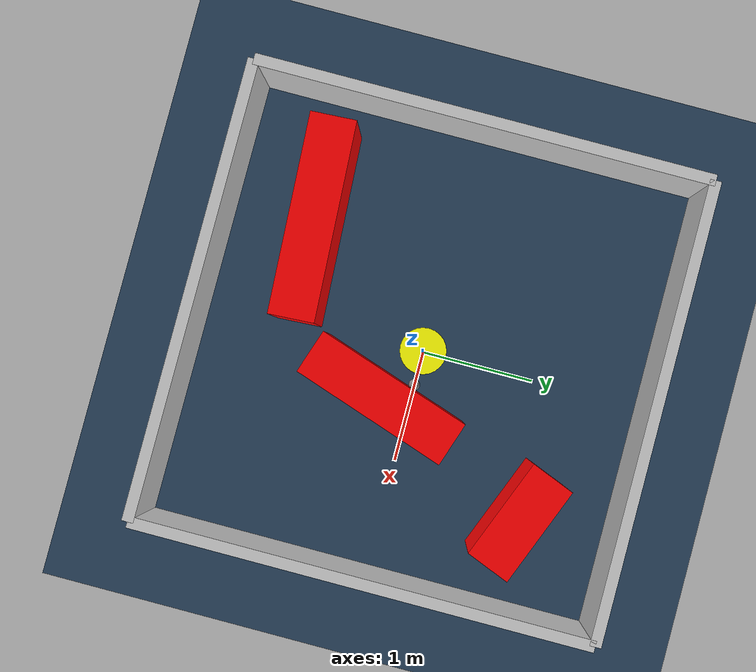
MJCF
<?xml version="1.0" ?>
<mujoco model="generated_environment">
  <option timestep="0.01" integrator="RK4" cone="elliptic"/>
  <default>
    <geom density="1"/>
  </default>
  <asset>
    <texture builtin="gradient" height="3072" rgb1="0.3 0.5 0.7" rgb2="0 0 0" type="skybox" width="512"/>
    <texture builtin="checker" height="300" mark="edge" markrgb="0.8 0.8 0.8" name="groundplane" rgb1="0.2 0.3 0.4" rgb2="0.1 0.2 0.3" type="2d" width="300"/>
    <material name="groundplane" reflectance="0.2" texrepeat="5 5" texture="groundplane" texuniform="true"/>
    <material name="robot" rgba="0.0 1.0 0.0 1"/>
  </asset>
  <worldbody>
    <light dir="0 0 -1" directional="true" pos="0 0 1.5"/>
    <geom condim="4" friction="1.0 0.005 0.001" material="groundplane" name="floor" size="0 0 0.05" type="plane"/>
    <body name="walls">
      <geom name="wall_1" condim="4" pos="-2.0 0.0 0.3" rgba="0.800000011920929 0.800000011920929 0.800000011920929 1.0" size="0.05 2.0 0.3" type="box"/>
      <geom name="wall_2" condim="4" pos="2.0 0.0 0.3" rgba="0.800000011920929 0.800000011920929 0.800000011920929 1.0" size="0.05 2.0 0.3" type="box"/>
      <geom name="wall_3" condim="4" pos="0.0 -2.0 0.3" rgba="0.800000011920929 0.800000011920929 0.800000011920929 1.0" size="2.0 0.05 0.3" type="box"/>
      <geom name="wall_4" condim="4" pos="0.0 2.0 0.3" rgba="0.800000011920929 0.800000011920929 0.800000011920929 1.0" size="2.0 0.05 0.3" type="box"/>
    </body>
    <body name="robot">
      <joint name="joint_x" type="slide" pos="0 0 0" axis="1 0 0"/>
      <joint name="joint_y" type="slide" pos="0 0 0" axis="0 1 0"/>
      <geom name="robot" type="sphere" pos="0.3 0.0 0.2" size="0.05" mass="5." friction="1.0 0.005 0.0001" condim="4" rgba="0.5 0.5 0.5 1.0"/>
      <site name="sensor_ball"/>
    </body>
    <body name="obstacle_movable_1">
      <geom name="obstacle_movable_1" condim="4" pos="0.0 0.0 0.2" euler="0 0 0.0" friction="1.0 0.005 0.001" rgba="1.0 1.0 0.0 1.0" size="0.2 0.2 0.0" type="cylinder" mass="0.1"/>
      <joint type="free"/>
    </body>
    <body name="obstacle_2_static">
      <geom name="obstacle_2_static" condim="4" pos="-0.8404155045094857 -1.1803963877849926 0.3" euler="0 0 3.108215427714325" friction="1.0 0.005 0.001" rgba="1 0 0 1" size="0.867920875258986 0.2 0.3" type="box"/>
    </body>
    <body name="obstacle_3_static">
      <geom name="obstacle_3_static" condim="4" pos="0.47168782445394686 -0.2354692765862476 0.3" euler="0 0 71.50526743386567" friction="1.0 0.005 0.001" rgba="1 0 0 1" size="0.7069567684230428 0.2 0.3" type="box"/>
    </body>
    <body name="obstacle_4_static">
      <geom name="obstacle_4_static" condim="4" pos="1.1736137609862909 1.1458007462710145 0.3" euler="0 0 158.26713122417726" friction="1.0 0.005 0.001" rgba="1 0 0 1" size="0.4581979916493165 0.2 0.3" type="box"/>
    </body>
  </worldbody>
  <actuator>
    <motor name="actuator_x" joint="joint_x" gear="1" ctrlrange="-1 1"/>
    <motor name="actuator_y" joint="joint_y" gear="1" ctrlrange="-1 1"/>
  </actuator>
</mujoco>
